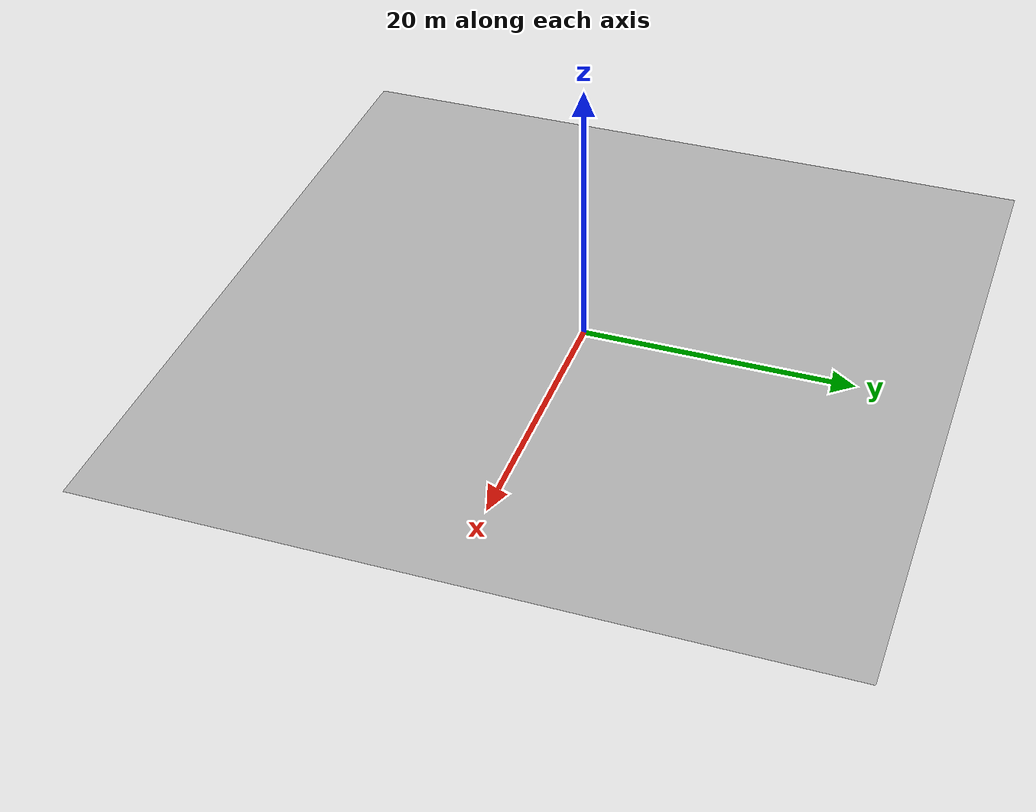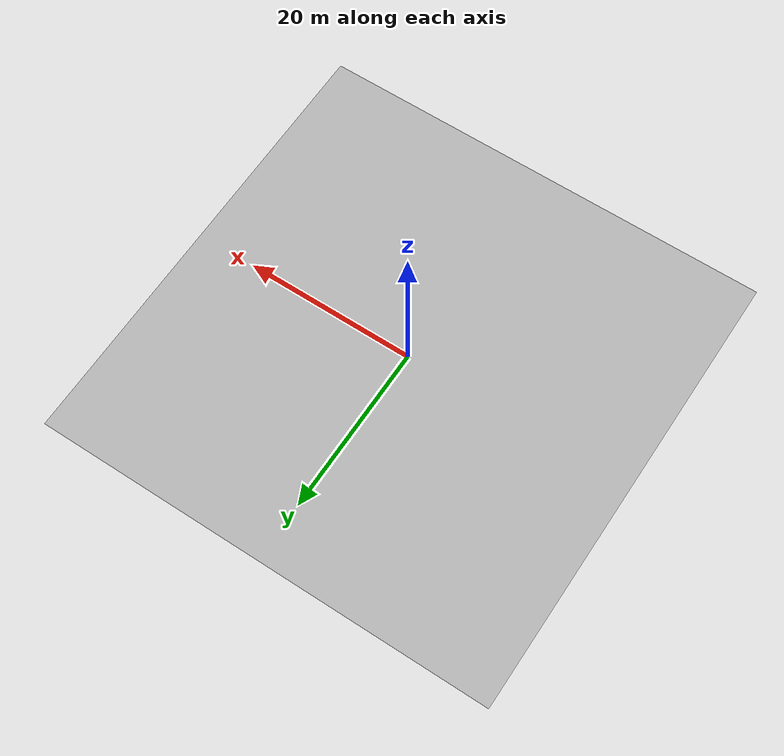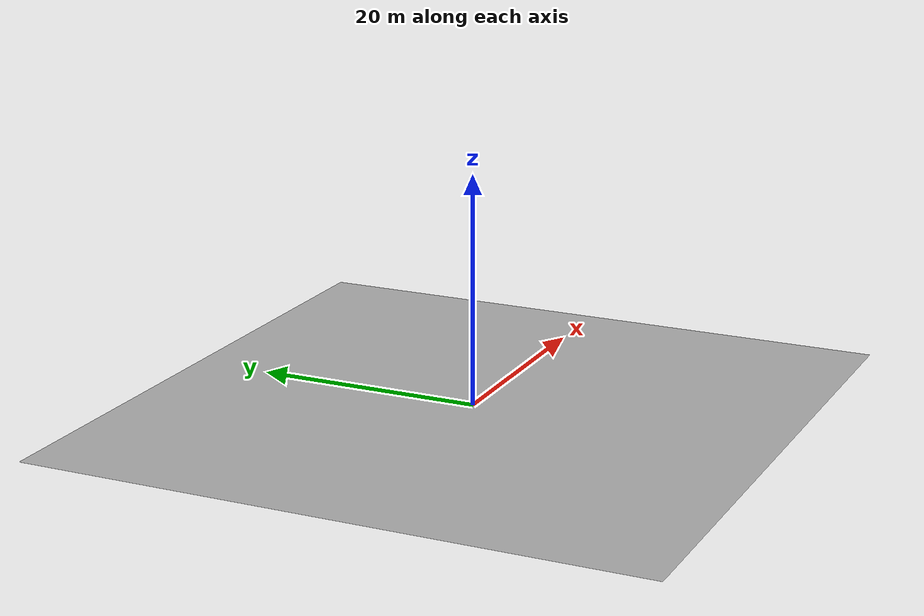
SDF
<?xml version="1.0" ?>
<?xml-model href="http://sdformat.org/schemas/root.xsd" schematypens="http://www.w3.org/2001/XMLSchema"?>
<sdf version="1.5">
  <world name="default">

    <!-- coordinate system {-->
    <spherical_coordinates>
      <surface_model>EARTH_WGS84</surface_model>
      <latitude_deg>47.397743</latitude_deg>
      <longitude_deg>8.545594</longitude_deg>
      <elevation>0.0</elevation>
      <heading_deg>0</heading_deg>
    </spherical_coordinates>

    <!-- physics engine {-->
    <physics name="default_physics" default="0" type="ode">
      <gravity>0 0 -9.8066</gravity>
      <ode>
        <solver>
          <type>quick</type>
          <iters>10</iters>
          <sor>1.3</sor>
          <use_dynamic_moi_rescaling>0</use_dynamic_moi_rescaling>
        </solver>
        <constraints>
          <cfm>0</cfm>
          <erp>0.2</erp>
          <contact_max_correcting_vel>1000</contact_max_correcting_vel>
          <contact_surface_layer>0.001</contact_surface_layer>
        </constraints>
      </ode>
      <max_step_size>0.004</max_step_size>
      <real_time_factor>1</real_time_factor>
      <real_time_update_rate>250</real_time_update_rate>
      <magnetic_field>6.0e-06 2.3e-05 -4.2e-05</magnetic_field>
    </physics>

    <!-- setup shadows {-->
    <scene>
      <shadows>false</shadows>
      <sky>
        <clouds/>
      </sky>
    </scene>

    <!-- sun {-->

    <light name='sun' type='directional'>
      <pose frame=''>0 0 1000 0.4 0.2 0</pose>
      <diffuse>1 1 1 1</diffuse>
      <specular>0.6 0.6 0.6 1</specular>
      <direction>0.1 0.1 -0.9</direction>
      <attenuation>
        <range>20</range>
        <constant>0.5</constant>
        <linear>0.01</linear>
        <quadratic>0.001</quadratic>
      </attenuation>
      <cast_shadows>1</cast_shadows>
    </light>

    <!-- ground plane {-->
    <model name="ground_plane">
      <static>true</static>
      <link name="link">
        <collision name="collision">
          <pose>0 0 0 0 0 0</pose>
          <geometry>
            <plane>
              <normal>0 0 1</normal>
              <size>250 250</size>
            </plane>
          </geometry>
          <surface>
            <friction>
              <ode>
                <mu>1</mu>
                <mu2>1</mu2>
              </ode>
            </friction>
          </surface>
        </collision>
        <visual name="grass">
          <pose>0 0 0 0 0 0</pose>
          <cast_shadows>false</cast_shadows>
          <geometry>
            <mesh>
              <uri>file://grass_plane/meshes/grass_plane.dae</uri>
            </mesh>
          </geometry>
        </visual>
      </link>
    </model>

    <!-- user camera {-->
    <gui>
      <camera name="camera">
        <pose>-60 -100 30 0 0.4 0.89</pose>
      </camera>
    </gui>

  </world>
</sdf>
